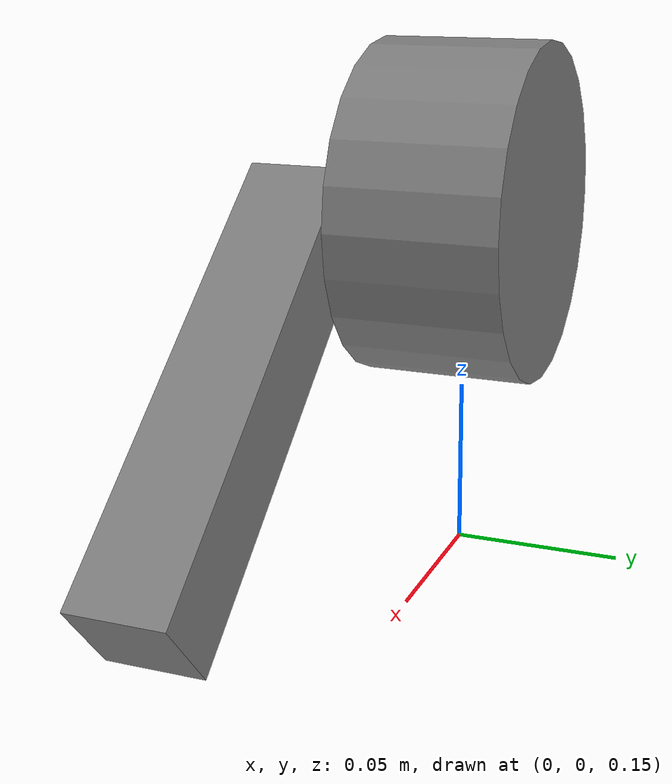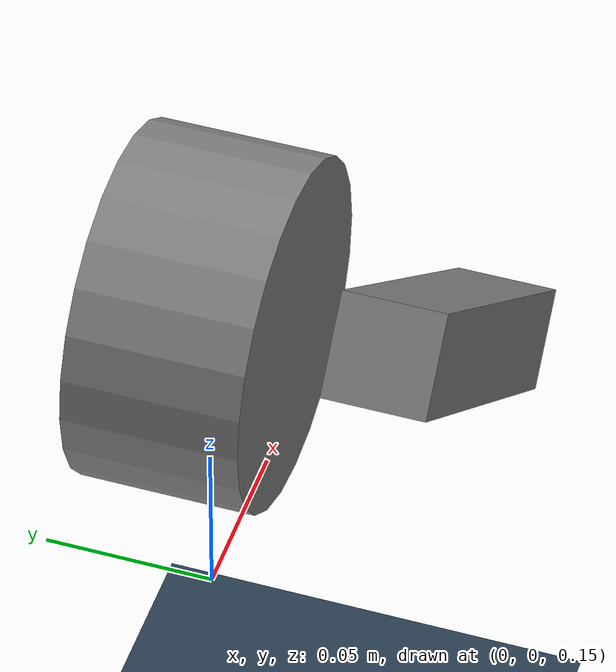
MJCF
<mujoco>
    <compiler autolimits="true" />

    <visual>
        <rgba haze="0.15 0.25 0.35 1" />
        <quality shadowsize="4096" />
        <map stiffness="700" shadowscale="0.5" fogstart="10" fogend="15" zfar="40" haze="0.3" />
    </visual>

    <asset>
        <texture type="skybox" builtin="gradient" rgb1="0.3 0.5 0.7" rgb2="0 0 0" width="512"
            height="512" />
        <texture name="texplane" type="2d" builtin="checker" rgb1=".2 .3 .4" rgb2=".1 0.15 0.2"
            width="512" height="512" mark="cross" markrgb=".8 .8 .8" />
        <material name="matplane" reflectance="0.3" texture="texplane" texrepeat="1 1"
            texuniform="true" />
    </asset>

    <worldbody>
        <!-- Model setup -->
        <body name="robot" pos="0 0 .03">
            <freejoint />
            <geom name="Cylinder" size="0.05 0.025" pos="0 0 0.225"
                quat="0.707107 0.707107 -2.44949e-07 0" type="cylinder" />
            <body name="Cuboid" pos="0 0 0.225" quat="-0.640856 -0.640857 0.298836 -0.298836">
                <inertial pos="0 -0.075 0.05" quat="0.707107 0 0 0.707107" mass="0.3"
                    diaginertia="0.0005 0.0002725 0.0002725" />
                <joint name="Revolute_joint" pos="0 0 0" axis="0 0 1" />
                <geom name="Cuboid" size="0.015 0.015 0.075" pos="0 -0.075 0.05"
                    quat="0.707107 -0.707107 -2.44949e-07 0" type="box" />
            </body>
        </body>

        <!-- Light setup -->
        <light directional="true" diffuse=".4 .4 .4" specular="0.1 0.1 0.1" pos="0 0 5.0"
            dir="0 0 -1" castshadow="false" />
        <light directional="true" diffuse=".6 .6 .6" specular="0.2 0.2 0.2" pos="0 0 4" dir="0 0 -1" />

        <!-- Ground setup -->
        <geom name="ground" type="plane" size="0 0 1" pos="0 0 0" quat="1 0 0 0" material="matplane"
            condim="1" />
        <body mocap="true" pos="-.1 .05 0" zaxis=".5 0 1">
        </body>
    </worldbody>

    <!-- Joint control setup -->

    <actuator>
        <position name="joint_position_ctrl" joint="Revolute_joint" kp="1" kv="0.01" />
    </actuator>

    <!-- Torque-based control for the Revolute_joint -->

</mujoco>
